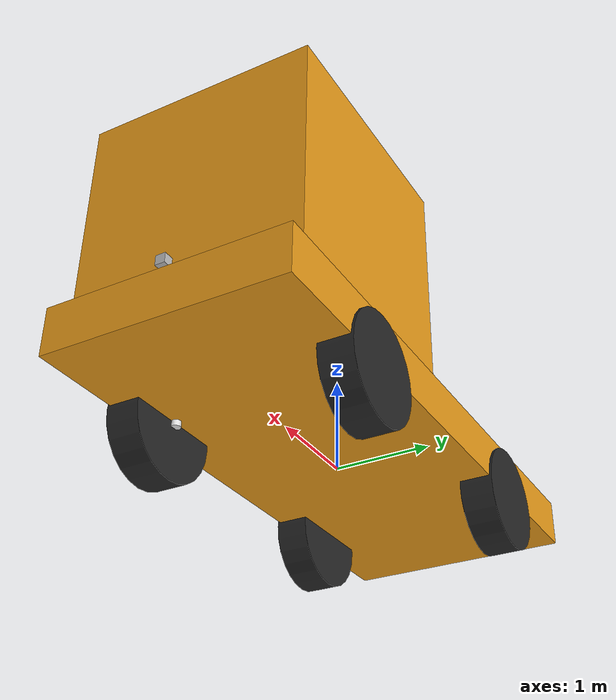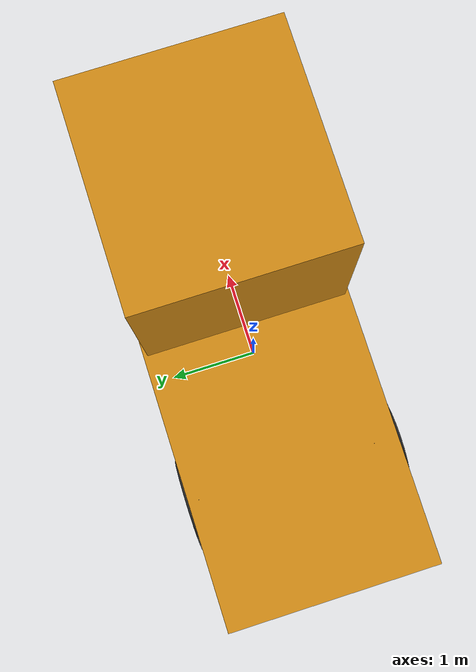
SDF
<?xml version="1.0" ?>
<sdf version="1.8">
  <model name="agv_ackermann">
    <!--
      self_collide=false: chassis and wheel links share overlapping geometry.
      This is intentional (simplified model) — disable to avoid internal forces.
    -->
    <self_collide>false</self_collide>

    <link name="chassis">
      <!-- Center the chassis body over the wheelbase midpoint, at height z=0.8 -->
      <pose>0 0 0.85 0 0 0</pose>
      <inertial>
        <!-- 8000 kg for frame, 2000 kg for cab — combined CoM estimate -->
        <mass>10000</mass>
        <inertia>
          <!-- Body frame approx (5×2.5×0.5) + cab (2.5×2.5×2.5) combined rough estimate -->
          <ixx>4500</ixx>
          <ixy>0</ixy>
          <ixz>0</ixz>
          <iyy>20000</iyy>
          <iyz>0</iyz>
          <izz>23000</izz>
        </inertia>
      </inertial>

      <visual name="visual_body_frame">
        <pose>0 0 -0.55 0 0 0</pose>
        <geometry>
          <box><size>6.0 2.5 0.5</size></box>
        </geometry>
        <material>
          <!-- Yellow-orange: standard port AGV color -->
          <ambient>0.8 0.5 0.1 1</ambient>
          <diffuse>0.9 0.6 0.1 1</diffuse>
          <specular>0.3 0.2 0.0 1</specular>
        </material>
      </visual>

      <visual name="visual_cab">
        <pose>1.5 0 0.7 0 0 0</pose>
        <geometry>
          <box><size>2.5 2.4 2.5</size></box>
        </geometry>
        <material>
          <ambient>0.8 0.5 0.1 1</ambient>
          <diffuse>0.9 0.6 0.1 1</diffuse>
          <specular>0.3 0.2 0.0 1</specular>
        </material>
      </visual>

      <!--
        Collision 1: Body frame (same as visual_body_frame)
        Using simplified box — no mesh needed.
      -->
      <collision name="collision_body_frame">
        <pose>0 0 -0.55 0 0 0</pose>
        <geometry>
          <box><size>6.0 2.5 0.5</size></box>
        </geometry>
        <surface>
          <friction>
            <ode>
              <mu>1.0</mu>
              <mu2>1.0</mu2>
            </ode>
          </friction>
          <contact>
            <ode>
              <kp>1e7</kp>
              <kd>1e3</kd>
              <max_vel>0.1</max_vel>
              <min_depth>0.002</min_depth>
            </ode>
          </contact>
        </surface>
      </collision>

      <!--
        Collision 2: Cab (same as visual_cab)
      -->
      <collision name="collision_cab">
        <pose>1.5 0 0.7 0 0 0</pose>
        <geometry>
          <box><size>2.5 2.4 2.5</size></box>
        </geometry>
        <surface>
          <friction>
            <ode>
              <mu>1.0</mu>
              <mu2>1.0</mu2>
            </ode>
          </friction>
          <contact>
            <ode>
              <kp>1e7</kp>
              <kd>1e3</kd>
              <max_vel>0.1</max_vel>
              <min_depth>0.002</min_depth>
            </ode>
          </contact>
        </surface>
      </collision>

      <!--
        Collision 3: Front bumper guard.
        Bridges the small gap between the low body frame and tall cab so the
        front face remains a solid obstacle against static harbour assets.
      -->
      <collision name="collision_front_bumper">
        <pose>2.9 0 -0.15 0 0 0</pose>
        <geometry>
          <box><size>0.35 2.4 1.4</size></box>
        </geometry>
        <surface>
          <friction>
            <ode>
              <mu>1.0</mu>
              <mu2>1.0</mu2>
            </ode>
          </friction>
          <contact>
            <ode>
              <kp>1e7</kp>
              <kd>1e3</kd>
              <max_vel>0.1</max_vel>
              <min_depth>0.002</min_depth>
            </ode>
          </contact>
        </surface>
      </collision>
    </link>

    <link name="front_left_wheel_steering_link">
      <!-- Front axle x=1.5, left wheel y=0.9 (steering pivot, slightly inward from wheel center 1.1) -->
      <pose>1.5 0.9 0.05 0 0 0</pose>
      <inertial>
        <!-- Small mass for numerical stability, not physically significant -->
        <mass>1.0</mass>
        <inertia>
          <ixx>0.05</ixx>
          <ixy>0</ixy>
          <ixz>0</ixz>
          <iyy>0.05</iyy>
          <iyz>0</iyz>
          <izz>0.05</izz>
        </inertia>
      </inertial>
      <!-- Small visual cylinder to show steering pivot (optional debug aid) -->
      <visual name="visual_steering_pivot_fl">
        <geometry>
          <cylinder><radius>0.05</radius><length>0.12</length></cylinder>
        </geometry>
        <material><ambient>0.9 0.9 0.9 1</ambient><diffuse>0.9 0.9 0.9 1</diffuse></material>
      </visual>
    </link>

    <!-- ================================================================
         FRONT RIGHT WHEEL STEERING LINK
    -->
    <link name="front_right_wheel_steering_link">
      <!-- Front axle x=1.5, right wheel y=-0.9 -->
      <pose>1.5 -0.9 0.05 0 0 0</pose>
      <inertial>
        <mass>1.0</mass>
        <inertia>
          <ixx>0.05</ixx><ixy>0</ixy><ixz>0</ixz>
          <iyy>0.05</iyy><iyz>0</iyz><izz>0.05</izz>
        </inertia>
      </inertial>
      <visual name="visual_steering_pivot_fr">
        <geometry>
          <cylinder><radius>0.05</radius><length>0.12</length></cylinder>
        </geometry>
        <material><ambient>0.9 0.9 0.9 1</ambient><diffuse>0.9 0.9 0.9 1</diffuse></material>
      </visual>
    </link>

    <link name="front_left_wheel">
      <!-- pose: front axle x=1.5, left y=1.1, wheel center z=0, rotated for cylinder axis Y -->
      <pose>1.5 1.1 0 -1.5707 0 0</pose>
      <inertial>
        <mass>150</mass>
        <inertia>
          <ixx>12.9</ixx><ixy>0</ixy><ixz>0</ixz>
          <iyy>12.9</iyy><iyz>0</iyz><izz>22.7</izz>
        </inertia>
      </inertial>
      <visual name="visual_front_left_wheel">
        <geometry>
          <cylinder><radius>0.55</radius><length>0.35</length></cylinder>
        </geometry>
        <material>
          <ambient>0.15 0.15 0.15 1</ambient>
          <diffuse>0.15 0.15 0.15 1</diffuse>
          <specular>0.1 0.1 0.1 1</specular>
        </material>
      </visual>
      <collision name="collision_front_left_wheel">
        <geometry>
          <cylinder><radius>0.55</radius><length>0.35</length></cylinder>
        </geometry>
        <!--
          Friction: high mu (rubber on concrete), fdir1 along tire rolling direction.
          Following volvofh16/vehicle_blue pattern.
        -->
        <surface>
          <friction>
            <ode>
              <mu>1.0</mu>
              <mu2>0.5</mu2>
              <fdir1>0 0 1</fdir1>
              <slip1>0.0</slip1>
              <slip2>0.0</slip2>
            </ode>
          </friction>
          <contact>
            <ode>
              <kp>1e7</kp><kd>1e3</kd>
              <max_vel>1.0</max_vel><min_depth>0.003</min_depth>
            </ode>
          </contact>
        </surface>
      </collision>
    </link>

    <!-- ================================================================
         FRONT RIGHT WHEEL
    -->
    <link name="front_right_wheel">
      <pose>1.5 -1.1 0 -1.5707 0 0</pose>
      <inertial>
        <mass>150</mass>
        <inertia>
          <ixx>12.9</ixx><ixy>0</ixy><ixz>0</ixz>
          <iyy>12.9</iyy><iyz>0</iyz><izz>22.7</izz>
        </inertia>
      </inertial>
      <visual name="visual_front_right_wheel">
        <geometry>
          <cylinder><radius>0.55</radius><length>0.35</length></cylinder>
        </geometry>
        <material>
          <ambient>0.15 0.15 0.15 1</ambient>
          <diffuse>0.15 0.15 0.15 1</diffuse>
          <specular>0.1 0.1 0.1 1</specular>
        </material>
      </visual>
      <collision name="collision_front_right_wheel">
        <geometry>
          <cylinder><radius>0.55</radius><length>0.35</length></cylinder>
        </geometry>
        <surface>
          <friction>
            <ode>
              <mu>1.0</mu><mu2>0.5</mu2><fdir1>0 0 1</fdir1>
              <slip1>0.0</slip1><slip2>0.0</slip2>
            </ode>
          </friction>
          <contact>
            <ode>
              <kp>1e7</kp><kd>1e3</kd>
              <max_vel>1.0</max_vel><min_depth>0.003</min_depth>
            </ode>
          </contact>
        </surface>
      </collision>
    </link>

    <!-- ================================================================
         REAR LEFT WHEEL (drive wheel)
         Same geometry as front wheels.
    -->
    <link name="rear_left_wheel">
      <pose>-1.5 1.1 0 -1.5707 0 0</pose>
      <inertial>
        <mass>150</mass>
        <inertia>
          <ixx>12.9</ixx><ixy>0</ixy><ixz>0</ixz>
          <iyy>12.9</iyy><iyz>0</iyz><izz>22.7</izz>
        </inertia>
      </inertial>
      <visual name="visual_rear_left_wheel">
        <geometry>
          <cylinder><radius>0.55</radius><length>0.35</length></cylinder>
        </geometry>
        <material>
          <ambient>0.15 0.15 0.15 1</ambient>
          <diffuse>0.15 0.15 0.15 1</diffuse>
          <specular>0.1 0.1 0.1 1</specular>
        </material>
      </visual>
      <collision name="collision_rear_left_wheel">
        <geometry>
          <cylinder><radius>0.55</radius><length>0.35</length></cylinder>
        </geometry>
        <surface>
          <friction>
            <ode>
              <!-- Higher friction for rear drive wheels -->
              <mu>1.0</mu><mu2>1.0</mu2><fdir1>0 0 1</fdir1>
              <slip1>0.0</slip1><slip2>0.0</slip2>
            </ode>
          </friction>
          <contact>
            <ode>
              <kp>1e7</kp><kd>1e3</kd>
              <max_vel>1.0</max_vel><min_depth>0.003</min_depth>
            </ode>
          </contact>
        </surface>
      </collision>
    </link>

    <!-- ================================================================
         REAR RIGHT WHEEL (drive wheel)
    -->
    <link name="rear_right_wheel">
      <pose>-1.5 -1.1 0 -1.5707 0 0</pose>
      <inertial>
        <mass>150</mass>
        <inertia>
          <ixx>12.9</ixx><ixy>0</ixy><ixz>0</ixz>
          <iyy>12.9</iyy><iyz>0</iyz><izz>22.7</izz>
        </inertia>
      </inertial>
      <visual name="visual_rear_right_wheel">
        <geometry>
          <cylinder><radius>0.55</radius><length>0.35</length></cylinder>
        </geometry>
        <material>
          <ambient>0.15 0.15 0.15 1</ambient>
          <diffuse>0.15 0.15 0.15 1</diffuse>
          <specular>0.1 0.1 0.1 1</specular>
        </material>
      </visual>
      <collision name="collision_rear_right_wheel">
        <geometry>
          <cylinder><radius>0.55</radius><length>0.35</length></cylinder>
        </geometry>
        <surface>
          <friction>
            <ode>
              <mu>1.0</mu><mu2>1.0</mu2><fdir1>0 0 1</fdir1>
              <slip1>0.0</slip1><slip2>0.0</slip2>
            </ode>
          </friction>
          <contact>
            <ode>
              <kp>1e7</kp><kd>1e3</kd>
              <max_vel>1.0</max_vel><min_depth>0.003</min_depth>
            </ode>
          </contact>
        </surface>
      </collision>
    </link>

    <link name="lidar_link">
      <pose>3.0 0 0.6 0 0 0</pose>
      <inertial>
        <mass>0.1</mass>
        <inertia>
          <ixx>0.000166667</ixx>
          <iyy>0.000166667</iyy>
          <izz>0.000166667</izz>
        </inertia>
      </inertial>
      <collision name="collision">
        <geometry>
          <box><size>0.1 0.1 0.1</size></box>
        </geometry>
      </collision>
      <visual name="visual">
        <geometry>
          <box><size>0.1 0.1 0.1</size></box>
        </geometry>
      </visual>
      <sensor name='gpu_lidar' type='gpu_lidar'>
        <pose>0 0 0 0 0 0</pose>
        <topic>/model/agv_ackermann/scan</topic>
        <gz_frame_id>lidar_link</gz_frame_id>
        <update_rate>10</update_rate>
        <lidar>
          <scan>
            <horizontal>
              <samples>640</samples>
              <resolution>1</resolution>
              <min_angle>-1.396263</min_angle>
              <max_angle>1.396263</max_angle>
            </horizontal>
            <vertical>
              <samples>1</samples>
              <resolution>1</resolution>
              <min_angle>0.0</min_angle>
              <max_angle>0.0</max_angle>
            </vertical>
          </scan>
          <range>
            <min>0.08</min>
            <max>25.0</max>
            <resolution>0.01</resolution>
          </range>
        </lidar>
        <visualize>true</visualize>
      </sensor>
    </link>

    <joint name='lidar_joint' type='fixed'>
      <parent>chassis</parent>
      <child>lidar_link</child>
    </joint>

    <!-- ================================================================
         JOINTS
    -->

    <joint name="front_left_wheel_steering_joint" type="revolute">
      <parent>chassis</parent>
      <child>front_left_wheel_steering_link</child>
      <axis>
        <xyz>0 0 1</xyz>
        <limit>
          <lower>-0.6</lower>
          <upper>+0.6</upper>
          <velocity>1.0</velocity>
          <effort>5000</effort>
        </limit>
        <dynamics>
          <damping>10.0</damping>
          <friction>1.0</friction>
        </dynamics>
        <use_parent_model_frame>1</use_parent_model_frame>
      </axis>
    </joint>

    <!--
      Front right steering joint: revolute around Z.
      Connects chassis → front_right_wheel_steering_link.
    -->
    <joint name="front_right_wheel_steering_joint" type="revolute">
      <parent>chassis</parent>
      <child>front_right_wheel_steering_link</child>
      <axis>
        <xyz>0 0 1</xyz>
        <limit>
          <lower>-0.6</lower>
          <upper>+0.6</upper>
          <velocity>1.0</velocity>
          <effort>5000</effort>
        </limit>
        <dynamics>
          <damping>10.0</damping>
          <friction>1.0</friction>
        </dynamics>
      </axis>
    </joint>

    <joint name="front_left_wheel_joint" type="revolute">
      <parent>front_left_wheel_steering_link</parent>
      <child>front_left_wheel</child>
      <axis>
        <xyz>0 0 1</xyz>
        <limit>
          <lower>-1.79769e+308</lower>
          <upper>1.79769e+308</upper>
        </limit>
        <dynamics>
          <damping>2.0</damping>
          <friction>0.5</friction>
        </dynamics>
      </axis>
    </joint>

    <!-- Front right wheel joint -->
    <joint name="front_right_wheel_joint" type="revolute">
      <parent>front_right_wheel_steering_link</parent>
      <child>front_right_wheel</child>
      <axis>
        <xyz>0 0 1</xyz>
        <limit>
          <lower>-1.79769e+308</lower>
          <upper>1.79769e+308</upper>
        </limit>
        <dynamics>
          <damping>2.0</damping>
          <friction>0.5</friction>
        </dynamics>
      </axis>
    </joint>

    <!--
      Rear left wheel joint (DRIVE wheel): revolute, chassis → rear_left_wheel.
      AckermannSteering drives these via left_joint parameter.
    -->
    <joint name="rear_left_wheel_joint" type="revolute">
      <parent>chassis</parent>
      <child>rear_left_wheel</child>
      <axis>
        <xyz>0 0 1</xyz>
        <limit>
          <lower>-1.79769e+308</lower>
          <upper>1.79769e+308</upper>
        </limit>
        <dynamics>
          <damping>2.0</damping>
          <friction>0.5</friction>
        </dynamics>
      </axis>
    </joint>

    <!-- Rear right wheel joint (DRIVE wheel) -->
    <joint name="rear_right_wheel_joint" type="revolute">
      <parent>chassis</parent>
      <child>rear_right_wheel</child>
      <axis>
        <xyz>0 0 1</xyz>
        <limit>
          <lower>-1.79769e+308</lower>
          <upper>1.79769e+308</upper>
        </limit>
        <dynamics>
          <damping>2.0</damping>
          <friction>0.5</friction>
        </dynamics>
      </axis>
    </joint>

    <plugin
      filename="ignition-gazebo-ackermann-steering-system"
      name="gz::sim::systems::AckermannSteering">
      <!--
        left_joint / right_joint: specifies ALL drive wheels (front + rear).
        Following the official example pattern (both front and rear listed).
      -->
      <left_joint>front_left_wheel_joint</left_joint>
      <left_joint>rear_left_wheel_joint</left_joint>
      <right_joint>front_right_wheel_joint</right_joint>
      <right_joint>rear_right_wheel_joint</right_joint>

      <!-- Steering joints (revolute Z) -->
      <left_steering_joint>front_left_wheel_steering_joint</left_steering_joint>
      <right_steering_joint>front_right_wheel_steering_joint</right_steering_joint>

      <!--
        kingpin_width: lateral distance between left/right steering pivot joints.
        Steering link pivots are at y=±0.9, so kingpin_width = 1.8 m.
      -->
      <kingpin_width>1.8</kingpin_width>

      <!-- steering_limit: max steer angle (rad). 0.6 rad ≈ 34° for heavy truck. -->
      <steering_limit>0.6</steering_limit>

      <!-- wheel_base: front-to-rear axle distance = 3.0 m -->
      <wheel_base>3.0</wheel_base>

      <!-- wheel_separation: rear left-to-right wheel center distance = 2.2 m -->
      <wheel_separation>2.2</wheel_separation>

      <!-- wheel_radius: tire radius = 0.55 m (realistic for Volvo FH16) -->
      <wheel_radius>0.55</wheel_radius>

      <!-- Velocity limits: port AGV max ~5 m/s (18 km/h) -->
      <min_velocity>-2.0</min_velocity>
      <max_velocity>5.0</max_velocity>

      <!-- Acceleration limits: conservative for heavy vehicle -->
      <min_acceleration>-2.0</min_acceleration>
      <max_acceleration>2.0</max_acceleration>
    </plugin>

  </model>
</sdf>
